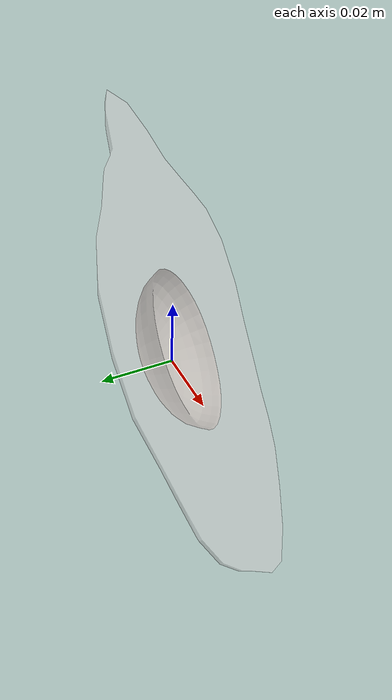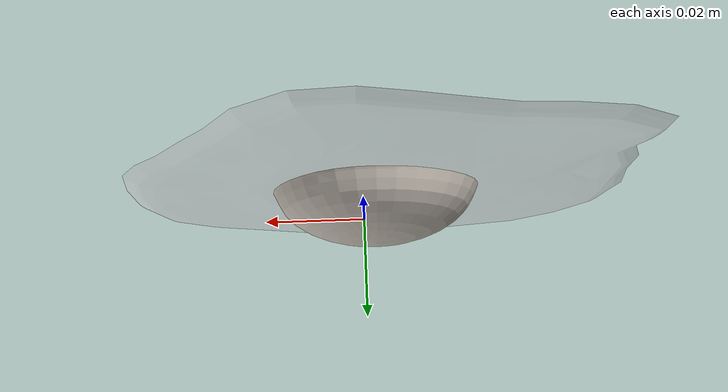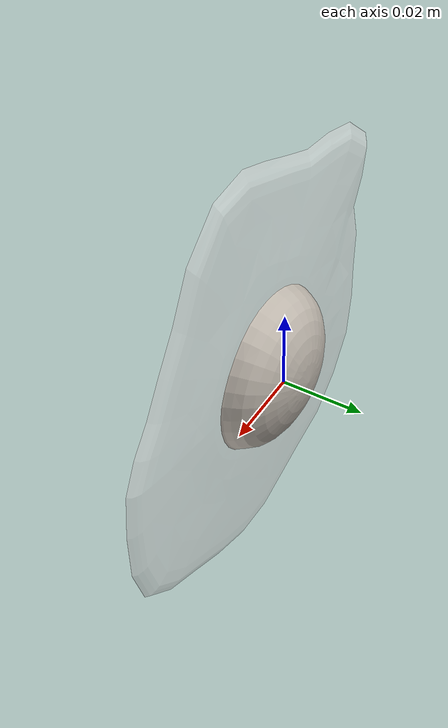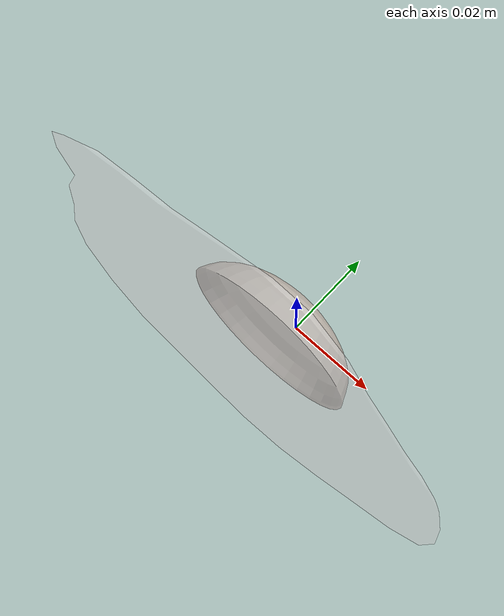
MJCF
<mujoco model="Egg_Cracked_28">
  <compiler autolimits="true" boundmass="0.01" angle="radian"/>
  <default>
    <default class="/">
      <default class="__VISUAL_MJT__">
        <geom contype="0" conaffinity="0" group="0"/>
      </default>
      <default class="__STRUCTURAL_MJT__">
        <geom contype="8" conaffinity="15" group="4" friction="0.90000000000000002 0.90000000000000002 0.001" solref="0.025000000000000001 1" solimp="0.998 0.998 0.001"/>
      </default>
      <default class="__DYNAMIC_MJT__">
        <geom contype="1" conaffinity="15" group="4" friction="0.90000000000000002 0.90000000000000002 0.001" solref="0.025000000000000001 1" solimp="0.998 0.998 0.001"/>
      </default>
    </default>
  </default>
  <asset>
    <texture name="Fried_Egg_White_Uncooked_Mat" type="2d" file="Fried_Egg_AlbedoTransparency.png"/>
    <material name="material_Fried_Egg_White_Uncooked_Mat" class="/" texture="Fried_Egg_White_Uncooked_Mat" specular="0.5" shininess="0.5" rgba="1 1 1 0.5"/>
    <texture name="Fried_Egg_Yolk_Mat" type="2d" file="Fried_Egg_AlbedoTransparency.png"/>
    <material name="material_Fried_Egg_Yolk_Mat" class="/" texture="Fried_Egg_Yolk_Mat" specular="0.5" shininess="0.5" rgba="1 1 1 1"/>
    <mesh name="Egg_Cracked_28_fried_egg_27_0" class="/" file="Egg_Cracked_28_fried_egg_27/Egg_Cracked_28_fried_egg_27_0.obj" scale="1 1 1"/>
    <mesh name="Egg_Cracked_28_fried_egg_27_1" class="/" file="Egg_Cracked_28_fried_egg_27/Egg_Cracked_28_fried_egg_27_1.obj" scale="1 1 1"/>
  </asset>
  <worldbody>
    <body name="Egg_Cracked_28">
      <joint name="Egg_Cracked_28_free" class="/" type="free" pos="0 0 0" axis="0 0 1" stiffness="0" range="0 0" armature="0" damping="0.10000000000000001" frictionloss="0"/>
      <body name="Egg_Cracked_28_fried_egg_27" pos="-0.0020200000000000001 -0.01023 0.00076000000000000004" quat="1 0 0 0">
        <geom name="Egg_Cracked_28_fried_egg_27_0" class="__VISUAL_MJT__" type="mesh" material="material_Fried_Egg_White_Uncooked_Mat" shellinertia="false" mesh="Egg_Cracked_28_fried_egg_27_0"/>
        <geom name="Egg_Cracked_28_fried_egg_27_1" class="__VISUAL_MJT__" type="mesh" material="material_Fried_Egg_Yolk_Mat" shellinertia="false" mesh="Egg_Cracked_28_fried_egg_27_1"/>
        <geom name="Egg_Cracked_28_PrimitiveCollider_0" class="__DYNAMIC_MJT__" type="box" size="0.054591532796621323 0.010231256484985352 0.05644463375210762" rgba="0 1 0 1" pos="-0.0020185746252536774 0.010231256484985352 -0.00075911357998847961" quat="1 0 0 0"/>
      </body>
    </body>
  </worldbody>
</mujoco>
